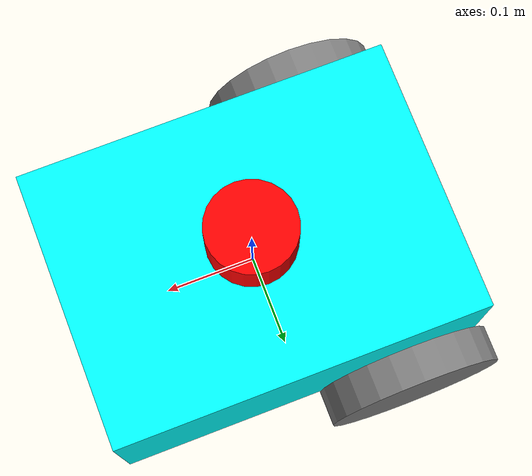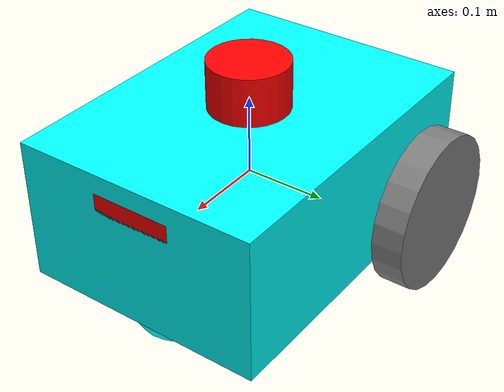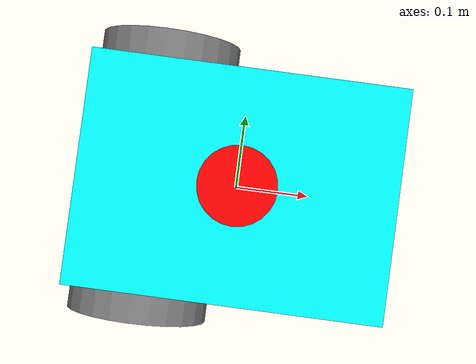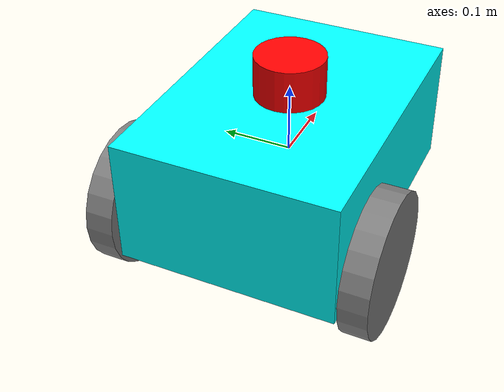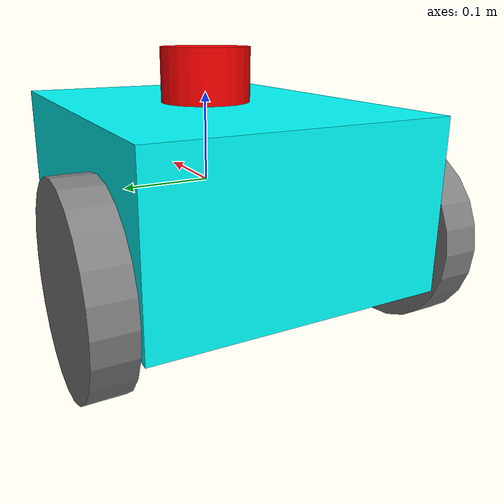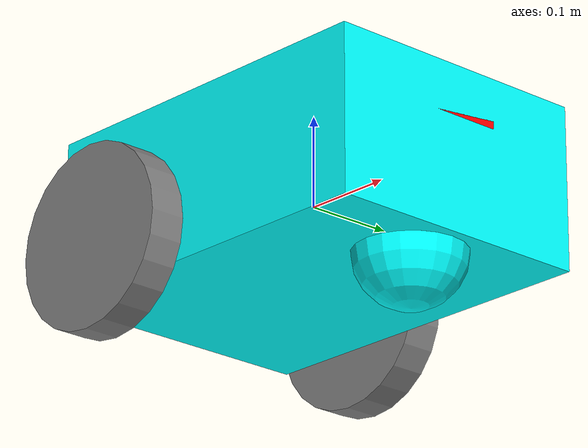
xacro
<?xml version="1.0"?>
<robot name="dif_bot" xmlns:xacro="http://www.ros.org/wiki/xacro">

  <!-- 1. Geometría, Colisiones e Inercias Base -->
  <xacro:include filename="robot.urdf.xacro"/>

  <!-- 2. Sensores (Geometría y TF) -->
  <xacro:include filename="sensors.xacro"/>

  <!-- 3. Plugins de Gazebo: Física (Fricción) -->
  <xacro:include filename="gz_physics.xacro"/>

  <!-- 4. Plugins de Gazebo: Control (DiffDrive) -->
  <xacro:include filename="gz_control.xacro"/>

  <!-- 5. Plugins de Gazebo: Sensores (Sistemas GZ) -->
  <gazebo>
    <plugin filename="gz-sim-sensors-system" name="gz::sim::systems::Sensors">
      <render_engine>ogre2</render_engine>
    </plugin>
    <plugin filename="gz-sim-imu-system" name="gz::sim::systems::Imu"/>
    <plugin filename="gz-sim-joint-state-publisher-system" name="gz::sim::systems::JointStatePublisher">
      <topic>/joint_states</topic>
    </plugin>
  </gazebo>

  <!-- Configuración específica del sensor IMU -->
  <gazebo reference="imu_link">
    <sensor name="imu_sensor" type="imu">
      <always_on>true</always_on>
      <update_rate>50</update_rate>
      <topic>imu</topic>
    </sensor>
  </gazebo>

  <!-- Configuración específica del Lidar -->
  <gazebo reference="lidar_link">
    <sensor name="lidar_sensor" type="gpu_lidar">
      <topic>scan</topic>
      <always_on>true</always_on>
      <update_rate>20</update_rate>
      <visualize>true</visualize>
      <lidar>
        <scan>
          <horizontal>
            <samples>360</samples>
            <resolution>1.0</resolution>
            <min_angle>-3.14159</min_angle>
            <max_angle>3.14159</max_angle>
          </horizontal>
        </scan>
        <range>
          <min>0.1</min>
          <max>10.0</max>
          <resolution>0.01</resolution>
        </range>
      </lidar>
    </sensor>
  </gazebo>

  <!-- Configuración específica de la Cámara -->
  <gazebo reference="camera_depth_frame">
    <sensor name="depth_camera" type="depth_camera">
      <topic>camera/depth/image_raw</topic>
      <always_on>true</always_on>
      <update_rate>30</update_rate>
      <visualize>true</visualize>
      <camera>
        <horizontal_fov>1.047</horizontal_fov>
        <image>
          <width>640</width>
          <height>480</height>
          <format>R_FLOAT32</format>
        </image>
        <clip>
          <near>0.05</near>
          <far>8.0</far>
        </clip>
      </camera>
    </sensor>
  </gazebo>

</robot>

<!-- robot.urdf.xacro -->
<robot name="dif_bot" xmlns:xacro="http://ros.org/wiki/xacro">

  <!-- PROPIEDADES GEOMÉTRICAS   -->
  <xacro:property name="base_width" value="0.31"/>
  <xacro:property name="base_length" value="0.42"/>
  <xacro:property name="base_height" value="0.18"/>

  <xacro:property name="wheel_radius" value="0.10"/>
  <xacro:property name="wheel_width" value="0.04"/>
  <xacro:property name="wheel_ygap" value="0.025"/>
  <xacro:property name="wheel_zoff" value="0.05"/>
  <xacro:property name="wheel_xoff" value="0.12"/>

  <xacro:property name="caster_xoff" value="0.14"/>

  <!-- MACROS DE INERCIA (Corregidas para estabilidad numérica) -->
  <xacro:macro name="box_inertia" params="m x y z">
    <inertial>
      <mass value="${m}"/>
      <inertia ixx="${(m/12.0)*(y*y+z*z)}" ixy="0.0" ixz="0.0"
               iyy="${(m/12.0)*(x*x+z*z)}" iyz="0.0"
               izz="${(m/12.0)*(x*x+y*y)}"/>
    </inertial>
  </xacro:macro>

  <xacro:macro name="cylinder_inertia" params="m r h">
    <inertial>
      <origin xyz="0 0 0" rpy="${pi/2} 0 0"/>
      <mass value="${m}"/>
      <inertia ixx="${(m/12.0)*(3*r*r+h*h)}" ixy="0.0" ixz="0.0"
               iyy="${(m/12.0)*(3*r*r+h*h)}" iyz="0.0"
               izz="${(m/2.0)*(r*r)}"/>
    </inertial>
  </xacro:macro>

  <xacro:macro name="sphere_inertia" params="m r">
    <inertial>
      <mass value="${m}"/>
      <inertia ixx="${(2.0/5.0)*m*r*r}" ixy="0.0" ixz="0.0"
               iyy="${(2.0/5.0)*m*r*r}" iyz="0.0"
               izz="${(2.0/5.0)*m*r*r}"/>
    </inertial>
  </xacro:macro>

  <!-- CHASIS (BASE LINK)        -->
  <link name="base_link">
    <visual>
      <geometry>
        <box size="${base_length} ${base_width} ${base_height}"/>
      </geometry>
      <material name="Cyan">
        <color rgba="0 1.0 1.0 1.0"/>
      </material>
    </visual>
    <collision>
      <geometry>
        <box size="${base_length} ${base_width} ${base_height}"/>
      </geometry>
    </collision>
    <xacro:box_inertia m="15" x="${base_length}" y="${base_width}" z="${base_height}"/>
  </link>

  <!-- BASE FOOTPRINT            -->
  <link name="base_footprint"/>

  <joint name="base_joint" type="fixed">
    <parent link="base_link"/>
    <child link="base_footprint"/>
    <origin xyz="0.0 0.0 ${-(wheel_radius + wheel_zoff)}" rpy="0 0 0"/>
  </joint>

  <!-- RUEDAS MOTRICES (MACRO)   -->
  <xacro:macro name="wheel" params="prefix x_reflect y_reflect">
    <link name="${prefix}_link">
      <visual>
        <origin xyz="0 0 0" rpy="${pi/2} 0 0"/>
        <geometry>
          <cylinder radius="${wheel_radius}" length="${wheel_width}"/>
        </geometry>
        <material name="Gray">
          <color rgba="0.5 0.5 0.5 1.0"/>
        </material>
      </visual>
      <collision>
        <origin xyz="0 0 0" rpy="${pi/2} 0 0"/>
        <geometry>
          <cylinder radius="${wheel_radius}" length="${wheel_width}"/>
        </geometry>
      </collision>
      <xacro:cylinder_inertia m="0.5" r="${wheel_radius}" h="${wheel_width}"/>
    </link>

    <joint name="${prefix}_joint" type="continuous">
      <parent link="base_link"/>
      <child link="${prefix}_link"/>
      <origin xyz="${x_reflect*wheel_xoff} ${y_reflect*(base_width/2+wheel_ygap)} ${-wheel_zoff}" rpy="0 0 0"/>
      <axis xyz="0 1 0"/>
    </joint>
  </xacro:macro>

  <xacro:wheel prefix="drivewhl_l" x_reflect="-1" y_reflect="1"/>
  <xacro:wheel prefix="drivewhl_r" x_reflect="-1" y_reflect="-1"/>

  <!-- RUEDA LOCA (CASTER)       -->
  <link name="front_caster">
    <visual>
      <geometry>
        <sphere radius="${(wheel_radius+wheel_zoff-(base_height/2))}"/>
      </geometry>
      <material name="Cyan">
        <color rgba="0 1.0 1.0 1.0"/>
      </material>
    </visual>
    <collision>
      <origin xyz="0 0 0" rpy="0 0 0"/>
      <geometry>
        <sphere radius="${(wheel_radius+wheel_zoff-(base_height/2))}"/>
      </geometry>
    </collision>
    <xacro:sphere_inertia m="0.5" r="${(wheel_radius+wheel_zoff-(base_height/2))}"/>
  </link>

  <joint name="caster_joint" type="fixed">
    <parent link="base_link"/>
    <child link="front_caster"/>
    <origin xyz="${caster_xoff} 0.0 ${-(base_height/2)}" rpy="0 0 0"/>
  </joint>

</robot>

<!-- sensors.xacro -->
<robot xmlns:xacro="http://www.ros.org/wiki/xacro">

  <!-- IMU                       -->
  <link name="imu_link">
    <visual>
      <geometry><box size="0.05 0.05 0.02"/></geometry>
      <material name="Red"><color rgba="1 0 0 1"/></material>
    </visual>
    <collision>
      <geometry><box size="0.05 0.05 0.02"/></geometry>
    </collision>
    <xacro:box_inertia m="0.1" x="0.05" y="0.05" z="0.02"/>
  </link>
  <joint name="imu_joint" type="fixed">
    <parent link="base_link"/>
    <child link="imu_link"/>
    <origin xyz="0 0 0.05" rpy="0 0 0"/>
  </joint>

  <!-- LIDAR 2D                  -->
  <link name="lidar_link">
    <visual>
      <geometry><cylinder radius="0.05" length="0.06"/></geometry>
      <material name="Red"><color rgba="1 0 0 1"/></material>
    </visual>
    <collision>
      <geometry><cylinder radius="0.05" length="0.06"/></geometry>
    </collision>
    <xacro:cylinder_inertia m="0.125" r="0.05" h="0.06"/>
  </link>
  <joint name="lidar_joint" type="fixed">
    <parent link="base_link"/>
    <child link="lidar_link"/>
    <origin xyz="0 0 0.12" rpy="0 0 0"/>
  </joint>

  <!-- CÁMARA DE PROFUNDIDAD     -->
  <link name="camera_link">
    <visual>
      <geometry><box size="0.02 0.10 0.03"/></geometry>
      <material name="Red"><color rgba="1 0 0 1"/></material>
    </visual>
    <collision>
      <geometry><box size="0.02 0.10 0.03"/></geometry>
    </collision>
    <xacro:box_inertia m="0.035" x="0.02" y="0.10" z="0.03"/>
  </link>
  <joint name="camera_joint" type="fixed">
    <parent link="base_link"/>
    <child link="camera_link"/>
    <origin xyz="0.20 0 0.05" rpy="0 0 0"/>
  </joint>

  <!-- Frame óptico de la cámara (estándar ROS) -->
  <link name="camera_depth_frame"/>
  <joint name="camera_depth_joint" type="fixed">
    <parent link="camera_link"/>
    <child link="camera_depth_frame"/>
    <origin xyz="0.01 0 0" rpy="-1.5708 0 -1.5708"/>
  </joint>

</robot>
